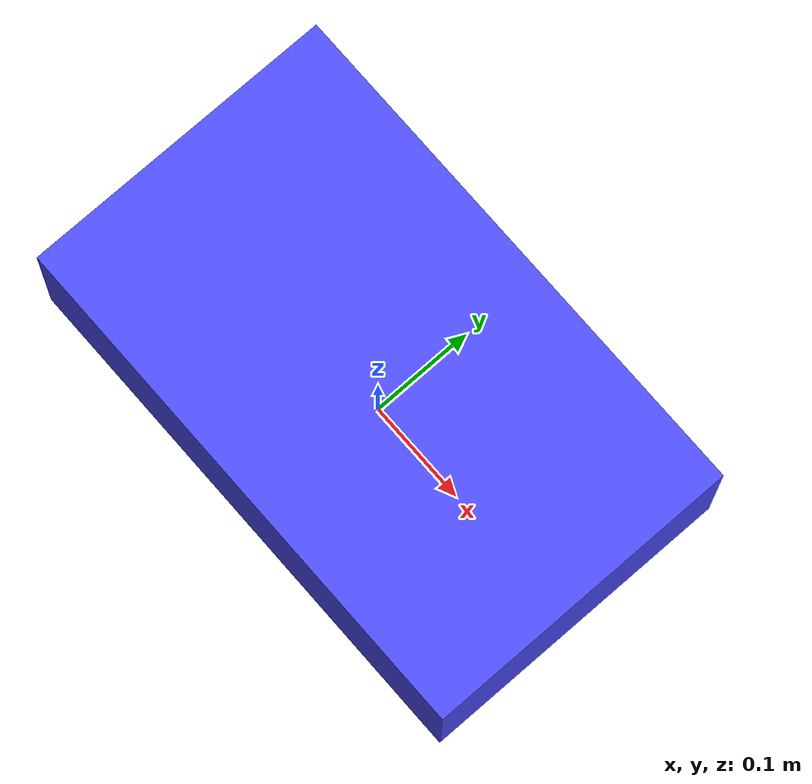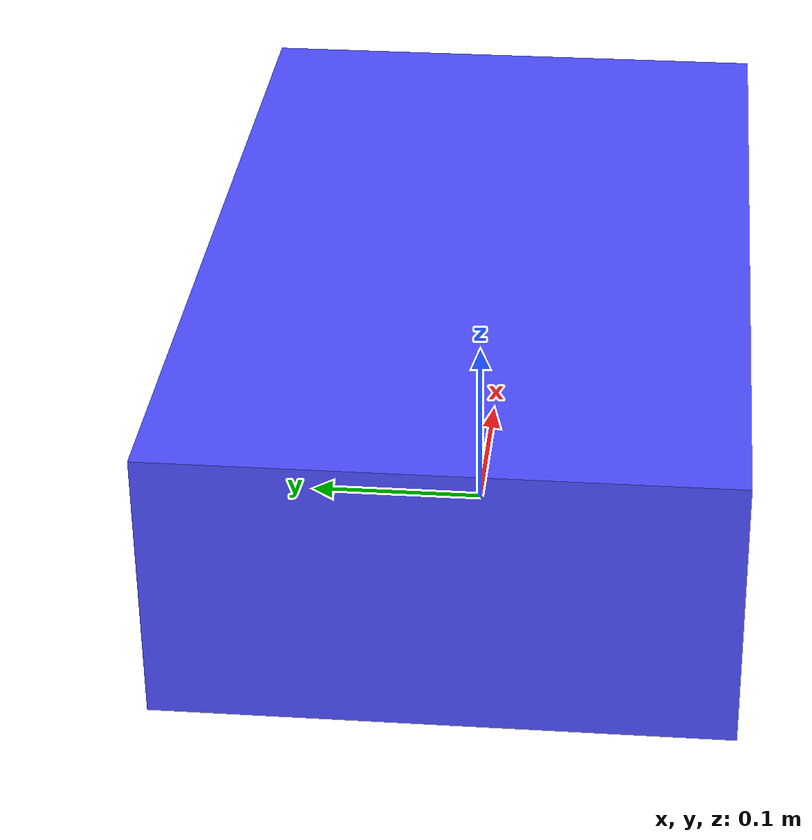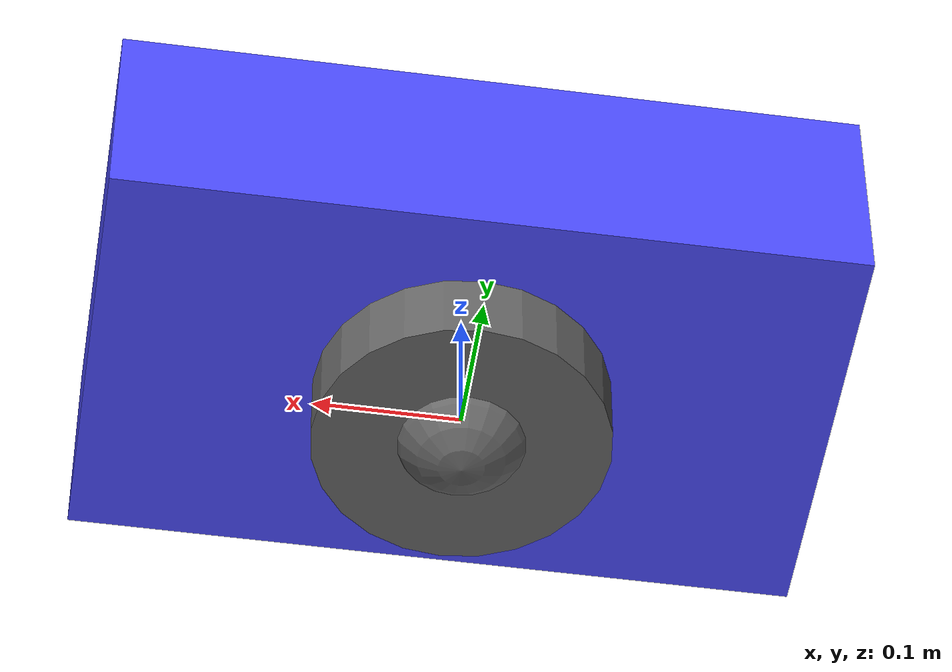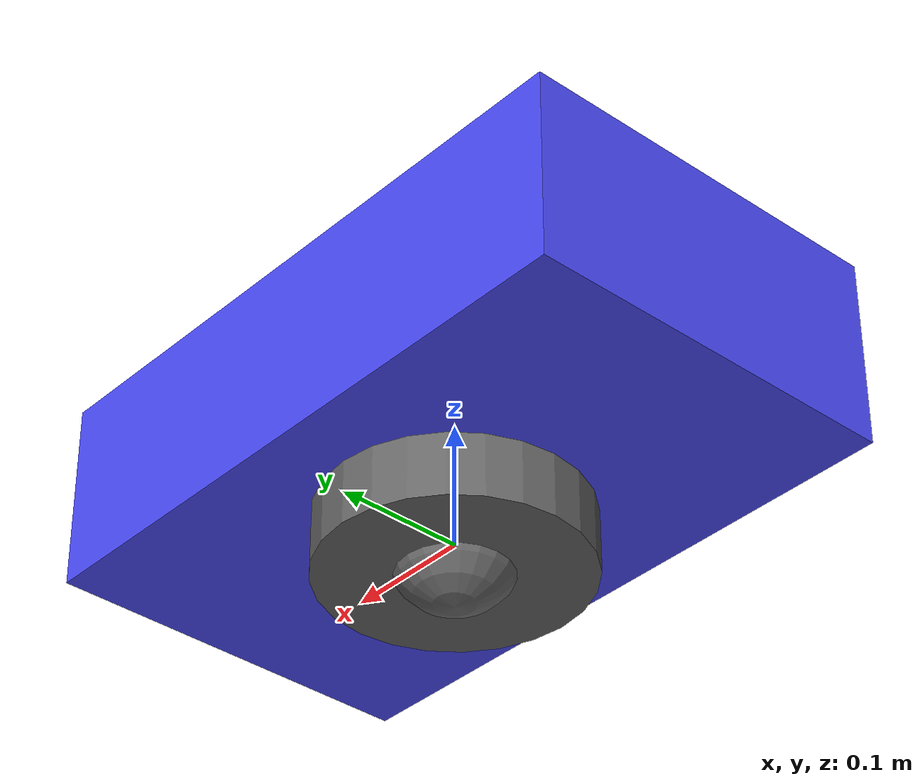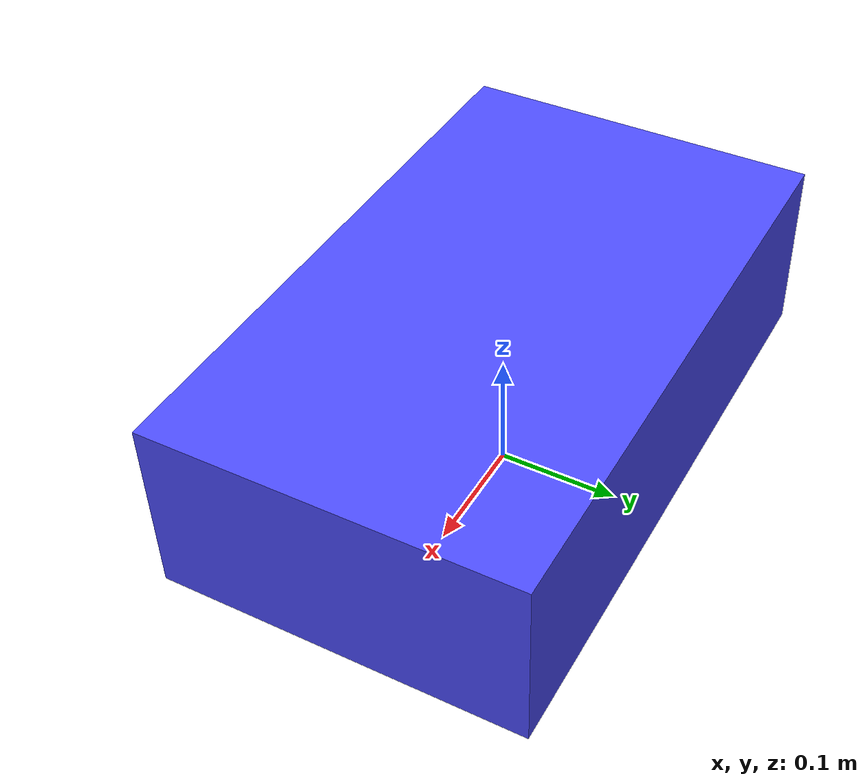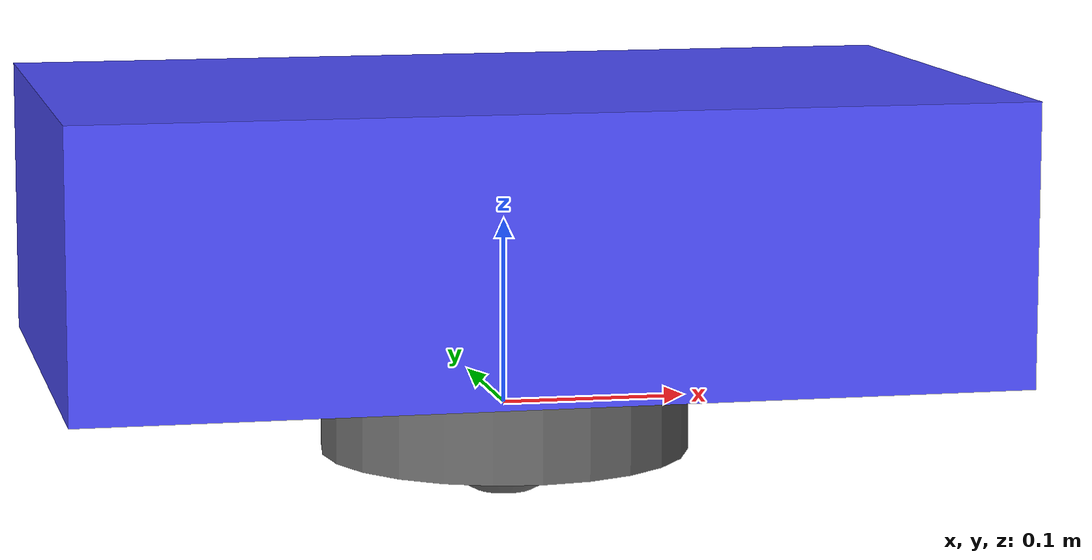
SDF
<?xml version="1.0" ?>
<sdf version="1.7">
  <model name="differential_drive_robot">
    <!-- Model properties -->
    <link name="base_link">
      <pose>0 0 0.1 0 0 0</pose>
      <inertial>
        <mass>10.0</mass>
        <inertia>
          <ixx>0.4</ixx>
          <ixy>0.0</ixy>
          <ixz>0.0</ixz>
          <iyy>0.4</iyy>
          <iyz>0.0</iyz>
          <izz>0.4</izz>
        </inertia>
      </inertial>

      <!-- Collision geometry -->
      <collision name="collision">
        <geometry>
          <box>
            <size>0.5 0.3 0.15</size>
          </box>
        </geometry>
      </collision>

      <!-- Visual geometry -->
      <visual name="visual">
        <geometry>
          <box>
            <size>0.5 0.3 0.15</size>
          </box>
        </geometry>
        <material>
          <ambient>0.1 0.1 0.8 1</ambient>
          <diffuse>0.3 0.3 1.0 1</diffuse>
          <specular>0.2 0.2 0.2 1</specular>
        </material>
      </visual>
    </link>

    <!-- Left wheel -->
    <link name="left_wheel">
      <inertial>
        <mass>2.0</mass>
        <inertia>
          <ixx>0.01</ixx>
          <ixy>0.0</ixy>
          <ixz>0.0</ixz>
          <iyy>0.01</iyy>
          <iyz>0.0</iyz>
          <izz>0.02</izz>
        </inertia>
      </inertial>

      <collision name="left_wheel_collision">
        <geometry>
          <cylinder>
            <radius>0.1</radius>
            <length>0.05</length>
          </cylinder>
        </geometry>
      </collision>

      <visual name="left_wheel_visual">
        <geometry>
          <cylinder>
            <radius>0.1</radius>
            <length>0.05</length>
          </cylinder>
        </geometry>
        <material>
          <ambient>0.2 0.2 0.2 1</ambient>
          <diffuse>0.4 0.4 0.4 1</diffuse>
          <specular>0.1 0.1 0.1 1</specular>
        </material>
      </visual>
    </link>

    <!-- Right wheel -->
    <link name="right_wheel">
      <inertial>
        <mass>2.0</mass>
        <inertia>
          <ixx>0.01</ixx>
          <ixy>0.0</ixy>
          <ixz>0.0</ixz>
          <iyy>0.01</iyy>
          <iyz>0.0</iyz>
          <izz>0.02</izz>
        </inertia>
      </inertial>

      <collision name="right_wheel_collision">
        <geometry>
          <cylinder>
            <radius>0.1</radius>
            <length>0.05</length>
          </cylinder>
        </geometry>
      </collision>

      <visual name="right_wheel_visual">
        <geometry>
          <cylinder>
            <radius>0.1</radius>
            <length>0.05</length>
          </cylinder>
        </geometry>
        <material>
          <ambient>0.2 0.2 0.2 1</ambient>
          <diffuse>0.4 0.4 0.4 1</diffuse>
          <specular>0.1 0.1 0.1 1</specular>
        </material>
      </visual>
    </link>

    <!-- Caster wheel -->
    <link name="caster_wheel">
      <inertial>
        <mass>0.5</mass>
        <inertia>
          <ixx>0.001</ixx>
          <ixy>0.0</ixy>
          <ixz>0.0</ixz>
          <iyy>0.001</iyy>
          <iyz>0.0</iyz>
          <izz>0.001</izz>
        </inertia>
      </inertial>

      <collision name="caster_wheel_collision">
        <geometry>
          <sphere>
            <radius>0.05</radius>
          </sphere>
        </geometry>
      </collision>

      <visual name="caster_wheel_visual">
        <geometry>
          <sphere>
            <radius>0.05</radius>
          </sphere>
        </geometry>
        <material>
          <ambient>0.2 0.2 0.2 1</ambient>
          <diffuse>0.4 0.4 0.4 1</diffuse>
          <specular>0.1 0.1 0.1 1</specular>
        </material>
      </visual>
    </link>

    <!-- Joints -->
    <joint name="left_wheel_joint" type="continuous">
      <parent>base_link</parent>
      <child>left_wheel</child>
      <pose>-0.15 0.175 0 0 0 0</pose>
      <axis>
        <xyz>0 1 0</xyz>
        <limit>
          <effort>100</effort>
          <velocity>100</velocity>
        </limit>
      </axis>
    </joint>

    <joint name="right_wheel_joint" type="continuous">
      <parent>base_link</parent>
      <child>right_wheel</child>
      <pose>-0.15 -0.175 0 0 0 0</pose>
      <axis>
        <xyz>0 1 0</xyz>
        <limit>
          <effort>100</effort>
          <velocity>100</velocity>
        </limit>
      </axis>
    </joint>

    <joint name="caster_wheel_joint" type="ball">
      <parent>base_link</parent>
      <child>caster_wheel</child>
      <pose>0.15 0 -0.05 0 0 0</pose>
    </joint>

    <!-- Sensors -->
    <!-- IMU sensor -->
    <sensor name="imu_sensor" type="imu">
      <always_on>1</always_on>
      <update_rate>100</update_rate>
      <pose>0 0 0.05 0 0 0</pose>
      <plugin name="imu_plugin" filename="libgazebo_ros_imu.so">
        <ros>
          <namespace>imu</namespace>
          <remapping>~/out:=data</remapping>
        </ros>
        <initial_orientation_as_reference>false</initial_orientation_as_reference>
        <gaussian_noise>0.001</gaussian_noise>
      </plugin>
    </sensor>

    <!-- LiDAR sensor -->
    <sensor name="lidar_sensor" type="ray">
      <always_on>1</always_on>
      <update_rate>10</update_rate>
      <pose>0.1 0 0.1 0 0 0</pose>
      <ray>
        <scan>
          <horizontal>
            <samples>360</samples>
            <resolution>1</resolution>
            <min_angle>-3.14159</min_angle>
            <max_angle>3.14159</max_angle>
          </horizontal>
        </scan>
        <range>
          <min>0.1</min>
          <max>30.0</max>
          <resolution>0.01</resolution>
        </range>
      </ray>
      <plugin name="lidar_plugin" filename="libgazebo_ros_laser.so">
        <ros>
          <namespace>lidar</namespace>
          <remapping>~/out:=scan</remapping>
        </ros>
        <output_type>sensor_msgs/LaserScan</output_type>
      </plugin>
    </sensor>

    <!-- Camera sensor -->
    <sensor name="camera_sensor" type="camera">
      <always_on>1</always_on>
      <update_rate>30</update_rate>
      <pose>0.15 0 0.05 0 0 0</pose>
      <camera>
        <horizontal_fov>1.047</horizontal_fov>
        <image>
          <width>640</width>
          <height>480</height>
          <format>R8G8B8</format>
        </image>
        <clip>
          <near>0.1</near>
          <far>10</far>
        </clip>
      </camera>
      <plugin name="camera_plugin" filename="libgazebo_ros_camera.so">
        <ros>
          <namespace>camera</namespace>
          <remapping>~/image_raw:=image</remapping>
          <remapping>~/camera_info:=camera_info</remapping>
        </ros>
      </plugin>
    </sensor>

    <!-- Motor control plugin -->
    <plugin name="differential_drive_controller" filename="libgazebo_ros_diff_drive.so">
      <ros>
        <namespace>diff_drive</namespace>
        <remapping>cmd_vel:=cmd_vel</remapping>
        <remapping>odom:=odom</remapping>
      </ros>
      <left_joint>left_wheel_joint</left_joint>
      <right_joint>right_wheel_joint</right_joint>
      <wheel_separation>0.35</wheel_separation>
      <wheel_diameter>0.2</wheel_diameter>
      <max_wheel_torque>20</max_wheel_torque>
      <max_wheel_acceleration>1.0</max_wheel_acceleration>
      <command_topic>cmd_vel</command_topic>
      <odometry_topic>odom</odometry_topic>
      <odometry_frame>odom</odometry_frame>
      <robot_base_frame>base_link</robot_base_frame>
      <publish_odom>true</publish_odom>
      <publish_odom_tf>true</publish_odom_tf>
      <publish_wheel_tf>true</publish_wheel_tf>
    </plugin>
  </model>
</sdf>
